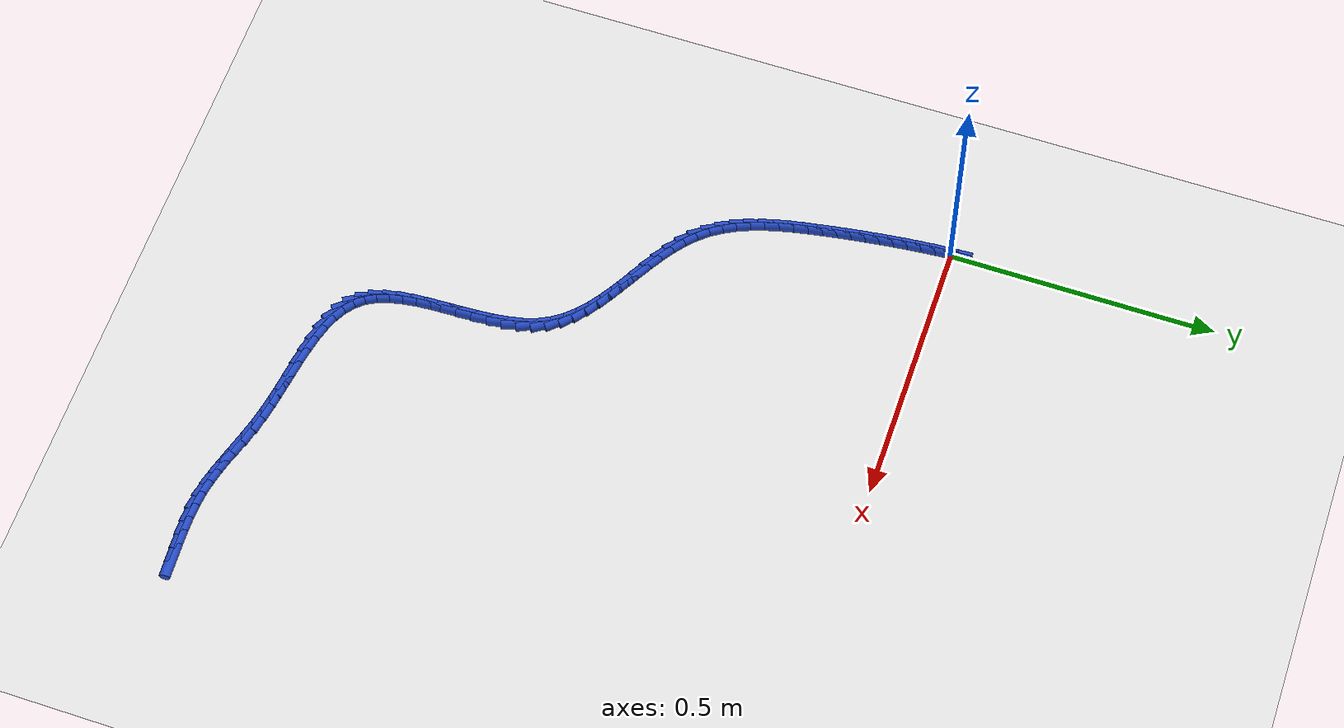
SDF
<sdf version="1.6">
 <world name="default">
  <model name="ground_plane">
   <static>1</static>
   <link name="link">
    <collision name="collision">
     <geometry><plane><normal>0 0 1</normal><size>100 100</size></plane></geometry>
     <surface><friction><ode><mu>100</mu><mu2>50</mu2></ode></friction></surface>
    </collision>
    <visual name="visual">
     <cast_shadows>0</cast_shadows>
     <geometry><plane><normal>0 0 1</normal><size>100 100</size></plane></geometry>
     <material>
      <script><uri>file://media/materials/scripts/gazebo.material</uri><name>Gazebo/WhiteGlow</name></script>
     </material>
    </visual>
   </link>
  </model>
  <model name="line">
   <link name="link_0">
    <pose>-4.336808689942018e-19 6.245004513516506e-17 0.01 0 1.57 -1.5156632983631286</pose>
    <collision name="collision">
     <geometry><cylinder><radius>0.01</radius><length>0.08</length></cylinder></geometry>
    </collision>
    <visual name="visual">
     <material>
      <script><name>Gazebo/Blue</name><uri>file://media/materials/scripts/gazebo.material</uri></script>
     </material>
     <geometry><cylinder><radius>0.01</radius><length>0.08</length></cylinder></geometry>
    </visual>
   </link>
   <link name="link_204">
    <pose>1.0068067473180728 -1.1181407085244373 0.01 0 1.57 0.05410076006660656</pose>
    <collision name="collision">
     <geometry><cylinder><radius>0.01</radius><length>0.08</length></cylinder></geometry>
    </collision>
    <visual name="visual">
     <material>
      <script><name>Gazebo/Blue</name><uri>file://media/materials/scripts/gazebo.material</uri></script>
     </material>
     <geometry><cylinder><radius>0.01</radius><length>0.08</length></cylinder></geometry>
    </visual>
   </link>
   <link name="link_205">
    <pose>0.9802364455773591 -1.1195795861310396 0.01 0 1.57 0.042651616677727704</pose>
    <collision name="collision">
     <geometry><cylinder><radius>0.01</radius><length>0.08</length></cylinder></geometry>
    </collision>
    <visual name="visual">
     <material>
      <script><name>Gazebo/Blue</name><uri>file://media/materials/scripts/gazebo.material</uri></script>
     </material>
     <geometry><cylinder><radius>0.01</radius><length>0.08</length></cylinder></geometry>
    </visual>
   </link>
   <link name="link_206">
    <pose>0.9538807871666061 -1.12070437971358 0.01 0 1.57 0.014492640856504835</pose>
    <collision name="collision">
     <geometry><cylinder><radius>0.01</radius><length>0.08</length></cylinder></geometry>
    </collision>
    <visual name="visual">
     <material>
      <script><name>Gazebo/Blue</name><uri>file://media/materials/scripts/gazebo.material</uri></script>
     </material>
     <geometry><cylinder><radius>0.01</radius><length>0.08</length></cylinder></geometry>
    </visual>
   </link>
   <link name="link_207">
    <pose>0.9278006631498769 -1.1210823760491782 0.01 0 1.57 -0.031124327392992736</pose>
    <collision name="collision">
     <geometry><cylinder><radius>0.01</radius><length>0.08</length></cylinder></geometry>
    </collision>
    <visual name="visual">
     <material>
      <script><name>Gazebo/Blue</name><uri>file://media/materials/scripts/gazebo.material</uri></script>
     </material>
     <geometry><cylinder><radius>0.01</radius><length>0.08</length></cylinder></geometry>
    </visual>
   </link>
   <link name="link_208">
    <pose>0.9020569645912389 -1.1202808619149556 0.01 0 1.57 -0.0949437568069817</pose>
    <collision name="collision">
     <geometry><cylinder><radius>0.01</radius><length>0.08</length></cylinder></geometry>
    </collision>
    <visual name="visual">
     <material>
      <script><name>Gazebo/Blue</name><uri>file://media/materials/scripts/gazebo.material</uri></script>
     </material>
     <geometry><cylinder><radius>0.01</radius><length>0.08</length></cylinder></geometry>
    </visual>
   </link>
   <link name="link_209">
    <pose>0.8767105825547556 -1.1178671240880322 0.01 0 1.57 -0.17100888922612556</pose>
    <collision name="collision">
     <geometry><cylinder><radius>0.01</radius><length>0.08</length></cylinder></geometry>
    </collision>
    <visual name="visual">
     <material>
      <script><name>Gazebo/Blue</name><uri>file://media/materials/scripts/gazebo.material</uri></script>
     </material>
     <geometry><cylinder><radius>0.01</radius><length>0.08</length></cylinder></geometry>
    </visual>
   </link>
   <link name="link_210">
    <pose>0.8517721970111292 -1.1135603741436149 0.01 0 1.57 -0.2331476497285858</pose>
    <collision name="collision">
     <geometry><cylinder><radius>0.01</radius><length>0.08</length></cylinder></geometry>
    </collision>
    <visual name="visual">
     <material>
      <script><name>Gazebo/Blue</name><uri>file://media/materials/scripts/gazebo.material</uri></script>
     </material>
     <geometry><cylinder><radius>0.01</radius><length>0.08</length></cylinder></geometry>
    </visual>
   </link>
   <link name="link_211">
    <pose>0.8270508592134423 -1.107689896056424 0.01 0 1.57 -0.2738693444778754</pose>
    <collision name="collision">
     <geometry><cylinder><radius>0.01</radius><length>0.08</length></cylinder></geometry>
    </collision>
    <visual name="visual">
     <material>
      <script><name>Gazebo/Blue</name><uri>file://media/materials/scripts/gazebo.material</uri></script>
     </material>
     <geometry><cylinder><radius>0.01</radius><length>0.08</length></cylinder></geometry>
    </visual>
   </link>
   <link name="link_212">
    <pose>0.8023050163841859 -1.1007380875179942 0.01 0 1.57 -0.2931861212545199</pose>
    <collision name="collision">
     <geometry><cylinder><radius>0.01</radius><length>0.08</length></cylinder></geometry>
    </collision>
    <visual name="visual">
     <material>
      <script><name>Gazebo/Blue</name><uri>file://media/materials/scripts/gazebo.material</uri></script>
     </material>
     <geometry><cylinder><radius>0.01</radius><length>0.08</length></cylinder></geometry>
    </visual>
   </link>
   <link name="link_213">
    <pose>0.7772931157457378 -1.0931873462201949 0.01 0 1.57 -0.2918674027694441</pose>
    <collision name="collision">
     <geometry><cylinder><radius>0.01</radius><length>0.08</length></cylinder></geometry>
    </collision>
    <visual name="visual">
     <material>
      <script><name>Gazebo/Blue</name><uri>file://media/materials/scripts/gazebo.material</uri></script>
     </material>
     <geometry><cylinder><radius>0.01</radius><length>0.08</length></cylinder></geometry>
    </visual>
   </link>
   <link name="link_214">
    <pose>0.7517736045204783 -1.0855200698548941 0.01 0 1.57 -0.2711079880267009</pose>
    <collision name="collision">
     <geometry><cylinder><radius>0.01</radius><length>0.08</length></cylinder></geometry>
    </collision>
    <visual name="visual">
     <material>
      <script><name>Gazebo/Blue</name><uri>file://media/materials/scripts/gazebo.material</uri></script>
     </material>
     <geometry><cylinder><radius>0.01</radius><length>0.08</length></cylinder></geometry>
    </visual>
   </link>
   <link name="link_215">
    <pose>0.7255049299307855 -1.0782186561139615 0.01 0 1.57 -0.23247567017582577</pose>
    <collision name="collision">
     <geometry><cylinder><radius>0.01</radius><length>0.08</length></cylinder></geometry>
    </collision>
    <visual name="visual">
     <material>
      <script><name>Gazebo/Blue</name><uri>file://media/materials/scripts/gazebo.material</uri></script>
     </material>
     <geometry><cylinder><radius>0.01</radius><length>0.08</length></cylinder></geometry>
    </visual>
   </link>
   <link name="link_216">
    <pose>0.6982459851080546 -1.071764929838584 0.01 0 1.57 -0.186950548923952</pose>
    <collision name="collision">
     <geometry><cylinder><radius>0.01</radius><length>0.08</length></cylinder></geometry>
    </collision>
    <visual name="visual">
     <material>
      <script><name>Gazebo/Blue</name><uri>file://media/materials/scripts/gazebo.material</uri></script>
     </material>
     <geometry><cylinder><radius>0.01</radius><length>0.08</length></cylinder></geometry>
    </visual>
   </link>
   <link name="link_217">
    <pose>0.6699354651753151 -1.0664097277318563 0.01 0 1.57 -0.15712659383047975</pose>
    <collision name="collision">
     <geometry><cylinder><radius>0.01</radius><length>0.08</length></cylinder></geometry>
    </collision>
    <visual name="visual">
     <material>
      <script><name>Gazebo/Blue</name><uri>file://media/materials/scripts/gazebo.material</uri></script>
     </material>
     <geometry><cylinder><radius>0.01</radius><length>0.08</length></cylinder></geometry>
    </visual>
   </link>
   <link name="link_218">
    <pose>0.6409664883134508 -1.0618200979910393 0.01 0 1.57 -0.14463772891868623</pose>
    <collision name="collision">
     <geometry><cylinder><radius>0.01</radius><length>0.08</length></cylinder></geometry>
    </collision>
    <visual name="visual">
     <material>
      <script><name>Gazebo/Blue</name><uri>file://media/materials/scripts/gazebo.material</uri></script>
     </material>
     <geometry><cylinder><radius>0.01</radius><length>0.08</length></cylinder></geometry>
    </visual>
   </link>
   <link name="link_219">
    <pose>0.6118028629203501 -1.057572274460014 0.01 0 1.57 -0.148741478833304</pose>
    <collision name="collision">
     <geometry><cylinder><radius>0.01</radius><length>0.08</length></cylinder></geometry>
    </collision>
    <visual name="visual">
     <material>
      <script><name>Gazebo/Blue</name><uri>file://media/materials/scripts/gazebo.material</uri></script>
     </material>
     <geometry><cylinder><radius>0.01</radius><length>0.08</length></cylinder></geometry>
    </visual>
   </link>
   <link name="link_220">
    <pose>0.5829083973938987 -1.053242490982662 0.01 0 1.57 -0.170048167568897</pose>
    <collision name="collision">
     <geometry><cylinder><radius>0.01</radius><length>0.08</length></cylinder></geometry>
    </collision>
    <visual name="visual">
     <material>
      <script><name>Gazebo/Blue</name><uri>file://media/materials/scripts/gazebo.material</uri></script>
     </material>
     <geometry><cylinder><radius>0.01</radius><length>0.08</length></cylinder></geometry>
    </visual>
   </link>
   <link name="link_221">
    <pose>0.5547469001319846 -1.0484069814028638 0.01 0 1.57 -0.210626931151228</pose>
    <collision name="collision">
     <geometry><cylinder><radius>0.01</radius><length>0.08</length></cylinder></geometry>
    </collision>
    <visual name="visual">
     <material>
      <script><name>Gazebo/Blue</name><uri>file://media/materials/scripts/gazebo.material</uri></script>
     </material>
     <geometry><cylinder><radius>0.01</radius><length>0.08</length></cylinder></geometry>
    </visual>
   </link>
   <link name="link_222">
    <pose>0.5277821795324933 -1.0426419795645006 0.01 0 1.57 -0.27422136325497126</pose>
    <collision name="collision">
     <geometry><cylinder><radius>0.01</radius><length>0.08</length></cylinder></geometry>
    </collision>
    <visual name="visual">
     <material>
      <script><name>Gazebo/Blue</name><uri>file://media/materials/scripts/gazebo.material</uri></script>
     </material>
     <geometry><cylinder><radius>0.01</radius><length>0.08</length></cylinder></geometry>
    </visual>
   </link>
   <link name="link_223">
    <pose>0.5024780439933136 -1.0355237193114541 0.01 0 1.57 -0.3664219604289515</pose>
    <collision name="collision">
     <geometry><cylinder><radius>0.01</radius><length>0.08</length></cylinder></geometry>
    </collision>
    <visual name="visual">
     <material>
      <script><name>Gazebo/Blue</name><uri>file://media/materials/scripts/gazebo.material</uri></script>
     </material>
     <geometry><cylinder><radius>0.01</radius><length>0.08</length></cylinder></geometry>
    </visual>
   </link>
   <link name="link_224">
    <pose>0.47929830191233086 -1.0266284344876047 0.01 0 1.57 -0.494254664561035</pose>
    <collision name="collision">
     <geometry><cylinder><radius>0.01</radius><length>0.08</length></cylinder></geometry>
    </collision>
    <visual name="visual">
     <material>
      <script><name>Gazebo/Blue</name><uri>file://media/materials/scripts/gazebo.material</uri></script>
     </material>
     <geometry><cylinder><radius>0.01</radius><length>0.08</length></cylinder></geometry>
    </visual>
   </link>
   <link name="link_225">
    <pose>0.4587067616874333 -1.0155323589368341 0.01 0 1.57 -0.6638355269272612</pose>
    <collision name="collision">
     <geometry><cylinder><radius>0.01</radius><length>0.08</length></cylinder></geometry>
    </collision>
    <visual name="visual">
     <material>
      <script><name>Gazebo/Blue</name><uri>file://media/materials/scripts/gazebo.material</uri></script>
     </material>
     <geometry><cylinder><radius>0.01</radius><length>0.08</length></cylinder></geometry>
    </visual>
   </link>
   <link name="link_226">
    <pose>0.4411672317165071 -1.001811726503023 0.01 0 1.57 -0.8731542018869461</pose>
    <collision name="collision">
     <geometry><cylinder><radius>0.01</radius><length>0.08</length></cylinder></geometry>
    </collision>
    <visual name="visual">
     <material>
      <script><name>Gazebo/Blue</name><uri>file://media/materials/scripts/gazebo.material</uri></script>
     </material>
     <geometry><cylinder><radius>0.01</radius><length>0.08</length></cylinder></geometry>
    </visual>
   </link>
   <link name="link_227">
    <pose>0.42712417447235496 -0.9850592131197027 0.01 0 1.57 -1.0799787422342597</pose>
    <collision name="collision">
     <geometry><cylinder><radius>0.01</radius><length>0.08</length></cylinder></geometry>
    </collision>
    <visual name="visual">
     <material>
      <script><name>Gazebo/Blue</name><uri>file://media/materials/scripts/gazebo.material</uri></script>
     </material>
     <geometry><cylinder><radius>0.01</radius><length>0.08</length></cylinder></geometry>
    </visual>
   </link>
   <link name="link_228">
    <pose>0.4165481791612059 -0.9652702393138024 0.01 0 1.57 -1.2427219098864273</pose>
    <collision name="collision">
     <geometry><cylinder><radius>0.01</radius><length>0.08</length></cylinder></geometry>
    </collision>
    <visual name="visual">
     <material>
      <script><name>Gazebo/Blue</name><uri>file://media/materials/scripts/gazebo.material</uri></script>
     </material>
     <geometry><cylinder><radius>0.01</radius><length>0.08</length></cylinder></geometry>
    </visual>
   </link>
   <link name="link_229">
    <pose>0.4089193172610195 -0.9428571163232504 0.01 0 1.57 -1.3615810914100703</pose>
    <collision name="collision">
     <geometry><cylinder><radius>0.01</radius><length>0.08</length></cylinder></geometry>
    </collision>
    <visual name="visual">
     <material>
      <script><name>Gazebo/Blue</name><uri>file://media/materials/scripts/gazebo.material</uri></script>
     </material>
     <geometry><cylinder><radius>0.01</radius><length>0.08</length></cylinder></geometry>
    </visual>
   </link>
   <link name="link_230">
    <pose>0.40369498418865474 -0.9182514277561475 0.01 0 1.57 -1.443955986963107</pose>
    <collision name="collision">
     <geometry><cylinder><radius>0.01</radius><length>0.08</length></cylinder></geometry>
    </collision>
    <visual name="visual">
     <material>
      <script><name>Gazebo/Blue</name><uri>file://media/materials/scripts/gazebo.material</uri></script>
     </material>
     <geometry><cylinder><radius>0.01</radius><length>0.08</length></cylinder></geometry>
    </visual>
   </link>
   <link name="link_231">
    <pose>0.4003325753609705 -0.8918847572205929 0.01 0 1.57 -1.497161500297152</pose>
    <collision name="collision">
     <geometry><cylinder><radius>0.01</radius><length>0.08</length></cylinder></geometry>
    </collision>
    <visual name="visual">
     <material>
      <script><name>Gazebo/Blue</name><uri>file://media/materials/scripts/gazebo.material</uri></script>
     </material>
     <geometry><cylinder><radius>0.01</radius><length>0.08</length></cylinder></geometry>
    </visual>
   </link>
   <link name="link_232">
    <pose>0.3982894861948258 -0.8641886883246881 0.01 0 1.57 -1.526536963535802</pose>
    <collision name="collision">
     <geometry><cylinder><radius>0.01</radius><length>0.08</length></cylinder></geometry>
    </collision>
    <visual name="visual">
     <material>
      <script><name>Gazebo/Blue</name><uri>file://media/materials/scripts/gazebo.material</uri></script>
     </material>
     <geometry><cylinder><radius>0.01</radius><length>0.08</length></cylinder></geometry>
    </visual>
   </link>
   <link name="link_233">
    <pose>0.3970231121070796 -0.8355948046765321 0.01 0 1.57 -1.5352895931791342</pose>
    <collision name="collision">
     <geometry><cylinder><radius>0.01</radius><length>0.08</length></cylinder></geometry>
    </collision>
    <visual name="visual">
     <material>
      <script><name>Gazebo/Blue</name><uri>file://media/materials/scripts/gazebo.material</uri></script>
     </material>
     <geometry><cylinder><radius>0.01</radius><length>0.08</length></cylinder></geometry>
    </visual>
   </link>
   <link name="link_234">
    <pose>0.3959908485145907 -0.8065346898842265 0.01 0 1.57 -1.5247464639756734</pose>
    <collision name="collision">
     <geometry><cylinder><radius>0.01</radius><length>0.08</length></cylinder></geometry>
    </collision>
    <visual name="visual">
     <material>
      <script><name>Gazebo/Blue</name><uri>file://media/materials/scripts/gazebo.material</uri></script>
     </material>
     <geometry><cylinder><radius>0.01</radius><length>0.08</length></cylinder></geometry>
    </visual>
   </link>
   <link name="link_235">
    <pose>0.3946500908342184 -0.7774399275558711 0.01 0 1.57 -1.494567237090191</pose>
    <collision name="collision">
     <geometry><cylinder><radius>0.01</radius><length>0.08</length></cylinder></geometry>
    </collision>
    <visual name="visual">
     <material>
      <script><name>Gazebo/Blue</name><uri>file://media/materials/scripts/gazebo.material</uri></script>
     </material>
     <geometry><cylinder><radius>0.01</radius><length>0.08</length></cylinder></geometry>
    </visual>
   </link>
   <link name="link_236">
    <pose>0.3924582344828212 -0.7487421012995648 0.01 0 1.57 -1.442842997710694</pose>
    <collision name="collision">
     <geometry><cylinder><radius>0.01</radius><length>0.08</length></cylinder></geometry>
    </collision>
    <visual name="visual">
     <material>
      <script><name>Gazebo/Blue</name><uri>file://media/materials/scripts/gazebo.material</uri></script>
     </material>
     <geometry><cylinder><radius>0.01</radius><length>0.08</length></cylinder></geometry>
    </visual>
   </link>
   <link name="link_237">
    <pose>0.38887267487725863 -0.7208727947234101 0.01 0 1.57 -1.3661832463202155</pose>
    <collision name="collision">
     <geometry><cylinder><radius>0.01</radius><length>0.08</length></cylinder></geometry>
    </collision>
    <visual name="visual">
     <material>
      <script><name>Gazebo/Blue</name><uri>file://media/materials/scripts/gazebo.material</uri></script>
     </material>
     <geometry><cylinder><radius>0.01</radius><length>0.08</length></cylinder></geometry>
    </visual>
   </link>
   <link name="link_238">
    <pose>0.383350807434389 -0.6942635914355052 0.01 0 1.57 -1.2601044150557472</pose>
    <collision name="collision">
     <geometry><cylinder><radius>0.01</radius><length>0.08</length></cylinder></geometry>
    </collision>
    <visual name="visual">
     <material>
      <script><name>Gazebo/Blue</name><uri>file://media/materials/scripts/gazebo.material</uri></script>
     </material>
     <geometry><cylinder><radius>0.01</radius><length>0.08</length></cylinder></geometry>
    </visual>
   </link>
   <link name="link_239">
    <pose>0.3753500275710718 -0.6693460750439522 0.01 0 1.57 -1.1205346052460774</pose>
    <collision name="collision">
     <geometry><cylinder><radius>0.01</radius><length>0.08</length></cylinder></geometry>
    </collision>
    <visual name="visual">
     <material>
      <script><name>Gazebo/Blue</name><uri>file://media/materials/scripts/gazebo.material</uri></script>
     </material>
     <geometry><cylinder><radius>0.01</radius><length>0.08</length></cylinder></geometry>
    </visual>
   </link>
   <link name="link_240">
    <pose>0.3643306933399023 -0.6465495544303124 0.01 0 1.57 -0.9633083486452023</pose>
    <collision name="collision">
     <geometry><cylinder><radius>0.01</radius><length>0.08</length></cylinder></geometry>
    </collision>
    <visual name="visual">
     <material>
      <script><name>Gazebo/Blue</name><uri>file://media/materials/scripts/gazebo.material</uri></script>
     </material>
     <geometry><cylinder><radius>0.01</radius><length>0.08</length></cylinder></geometry>
    </visual>
   </link>
   <link name="link_241">
    <pose>0.35008087784641745 -0.6260517172193245 0.01 0 1.57 -0.8254748179546937</pose>
    <collision name="collision">
     <geometry><cylinder><radius>0.01</radius><length>0.08</length></cylinder></geometry>
    </collision>
    <visual name="visual">
     <material>
      <script><name>Gazebo/Blue</name><uri>file://media/materials/scripts/gazebo.material</uri></script>
     </material>
     <geometry><cylinder><radius>0.01</radius><length>0.08</length></cylinder></geometry>
    </visual>
   </link>
   <link name="link_242">
    <pose>0.3330092156605689 -0.6075537808393986 0.01 0 1.57 -0.7147642481540535</pose>
    <collision name="collision">
     <geometry><cylinder><radius>0.01</radius><length>0.08</length></cylinder></geometry>
    </collision>
    <visual name="visual">
     <material>
      <script><name>Gazebo/Blue</name><uri>file://media/materials/scripts/gazebo.material</uri></script>
     </material>
     <geometry><cylinder><radius>0.01</radius><length>0.08</length></cylinder></geometry>
    </visual>
   </link>
   <link name="link_243">
    <pose>0.31359346853677844 -0.5907038865209484 0.01 0 1.57 -0.631123153344958</pose>
    <collision name="collision">
     <geometry><cylinder><radius>0.01</radius><length>0.08</length></cylinder></geometry>
    </collision>
    <visual name="visual">
     <material>
      <script><name>Gazebo/Blue</name><uri>file://media/materials/scripts/gazebo.material</uri></script>
     </material>
     <geometry><cylinder><radius>0.01</radius><length>0.08</length></cylinder></geometry>
    </visual>
   </link>
   <link name="link_244">
    <pose>0.29231139822946633 -0.5751501754943862 0.01 0 1.57 -0.5724418565144686</pose>
    <collision name="collision">
     <geometry><cylinder><radius>0.01</radius><length>0.08</length></cylinder></geometry>
    </collision>
    <visual name="visual">
     <material>
      <script><name>Gazebo/Blue</name><uri>file://media/materials/scripts/gazebo.material</uri></script>
     </material>
     <geometry><cylinder><radius>0.01</radius><length>0.08</length></cylinder></geometry>
    </visual>
   </link>
   <link name="link_245">
    <pose>0.2696407664930546 -0.5605407889901256 0.01 0 1.57 -0.5362953735109725</pose>
    <collision name="collision">
     <geometry><cylinder><radius>0.01</radius><length>0.08</length></cylinder></geometry>
    </collision>
    <visual name="visual">
     <material>
      <script><name>Gazebo/Blue</name><uri>file://media/materials/scripts/gazebo.material</uri></script>
     </material>
     <geometry><cylinder><radius>0.01</radius><length>0.08</length></cylinder></geometry>
    </visual>
   </link>
   <link name="link_246">
    <pose>0.24605933508196354 -0.5465238682385791 0.01 0 1.57 -0.5208320805104013</pose>
    <collision name="collision">
     <geometry><cylinder><radius>0.01</radius><length>0.08</length></cylinder></geometry>
    </collision>
    <visual name="visual">
     <material>
      <script><name>Gazebo/Blue</name><uri>file://media/materials/scripts/gazebo.material</uri></script>
     </material>
     <geometry><cylinder><radius>0.01</radius><length>0.08</length></cylinder></geometry>
    </visual>
   </link>
   <link name="link_247">
    <pose>0.22204486575061366 -0.5327475544701592 0.01 0 1.57 -0.5251189364317509</pose>
    <collision name="collision">
     <geometry><cylinder><radius>0.01</radius><length>0.08</length></cylinder></geometry>
    </collision>
    <visual name="visual">
     <material>
      <script><name>Gazebo/Blue</name><uri>file://media/materials/scripts/gazebo.material</uri></script>
     </material>
     <geometry><cylinder><radius>0.01</radius><length>0.08</length></cylinder></geometry>
    </visual>
   </link>
   <link name="link_248">
    <pose>0.19807512025342738 -0.51885998891528 0.01 0 1.57 -0.5492259077996713</pose>
    <collision name="collision">
     <geometry><cylinder><radius>0.01</radius><length>0.08</length></cylinder></geometry>
    </collision>
    <visual name="visual">
     <material>
      <script><name>Gazebo/Blue</name><uri>file://media/materials/scripts/gazebo.material</uri></script>
     </material>
     <geometry><cylinder><radius>0.01</radius><length>0.08</length></cylinder></geometry>
    </visual>
   </link>
   <link name="link_249">
    <pose>0.17462786034482433 -0.5045093128043533 0.01 0 1.57 -0.5941753192986435</pose>
    <collision name="collision">
     <geometry><cylinder><radius>0.01</radius><length>0.08</length></cylinder></geometry>
    </collision>
    <visual name="visual">
     <material>
      <script><name>Gazebo/Blue</name><uri>file://media/materials/scripts/gazebo.material</uri></script>
     </material>
     <geometry><cylinder><radius>0.01</radius><length>0.08</length></cylinder></geometry>
    </visual>
   </link>
   <link name="link_250">
    <pose>0.15218084777922689 -0.48934366736779317 0.01 0 1.57 -0.6617336114100697</pose>
    <collision name="collision">
     <geometry><cylinder><radius>0.01</radius><length>0.08</length></cylinder></geometry>
    </collision>
    <visual name="visual">
     <material>
      <script><name>Gazebo/Blue</name><uri>file://media/materials/scripts/gazebo.material</uri></script>
     </material>
     <geometry><cylinder><radius>0.01</radius><length>0.08</length></cylinder></geometry>
    </visual>
   </link>
   <link name="link_251">
    <pose>0.1312118443110547 -0.4730111938360111 0.01 0 1.57 -0.753885708154747</pose>
    <collision name="collision">
     <geometry><cylinder><radius>0.01</radius><length>0.08</length></cylinder></geometry>
    </collision>
    <visual name="visual">
     <material>
      <script><name>Gazebo/Blue</name><uri>file://media/materials/scripts/gazebo.material</uri></script>
     </material>
     <geometry><cylinder><radius>0.01</radius><length>0.08</length></cylinder></geometry>
    </visual>
   </link>
   <link name="link_252">
    <pose>0.11219861169473014 -0.4551600334394216 0.01 0 1.57 -0.8698949688999668</pose>
    <collision name="collision">
     <geometry><cylinder><radius>0.01</radius><length>0.08</length></cylinder></geometry>
    </collision>
    <visual name="visual">
     <material>
      <script><name>Gazebo/Blue</name><uri>file://media/materials/scripts/gazebo.material</uri></script>
     </material>
     <geometry><cylinder><radius>0.01</radius><length>0.08</length></cylinder></geometry>
    </visual>
   </link>
   <link name="link_253">
    <pose>0.09558248694303163 -0.43546872438794937 0.01 0 1.57 -0.9870051345106785</pose>
    <collision name="collision">
     <geometry><cylinder><radius>0.01</radius><length>0.08</length></cylinder></geometry>
    </collision>
    <visual name="visual">
     <material>
      <script><name>Gazebo/Blue</name><uri>file://media/materials/scripts/gazebo.material</uri></script>
     </material>
     <geometry><cylinder><radius>0.01</radius><length>0.08</length></cylinder></geometry>
    </visual>
   </link>
   <link name="link_254">
    <pose>0.08138040295579943 -0.4139699763295344 0.01 0 1.57 -1.0891551379126392</pose>
    <collision name="collision">
     <geometry><cylinder><radius>0.01</radius><length>0.08</length></cylinder></geometry>
    </collision>
    <visual name="visual">
     <material>
      <script><name>Gazebo/Blue</name><uri>file://media/materials/scripts/gazebo.material</uri></script>
     </material>
     <geometry><cylinder><radius>0.01</radius><length>0.08</length></cylinder></geometry>
    </visual>
   </link>
   <link name="link_255">
    <pose>0.0693350239004605 -0.3909253801797504 0.01 0 1.57 -1.175473723195908</pose>
    <collision name="collision">
     <geometry><cylinder><radius>0.01</radius><length>0.08</length></cylinder></geometry>
    </collision>
    <visual name="visual">
     <material>
      <script><name>Gazebo/Blue</name><uri>file://media/materials/scripts/gazebo.material</uri></script>
     </material>
     <geometry><cylinder><radius>0.01</radius><length>0.08</length></cylinder></geometry>
    </visual>
   </link>
   <link name="link_256">
    <pose>0.05918442210454956 -0.3666003588117088 0.01 0 1.57 -1.2465234403461127</pose>
    <collision name="collision">
     <geometry><cylinder><radius>0.01</radius><length>0.08</length></cylinder></geometry>
    </collision>
    <visual name="visual">
     <material>
      <script><name>Gazebo/Blue</name><uri>file://media/materials/scripts/gazebo.material</uri></script>
     </material>
     <geometry><cylinder><radius>0.01</radius><length>0.08</length></cylinder></geometry>
    </visual>
   </link>
   <link name="link_257">
    <pose>0.05066666989560027 -0.34126033509851866 0.01 0 1.57 -1.303421404097788</pose>
    <collision name="collision">
     <geometry><cylinder><radius>0.01</radius><length>0.08</length></cylinder></geometry>
    </collision>
    <visual name="visual">
     <material>
      <script><name>Gazebo/Blue</name><uri>file://media/materials/scripts/gazebo.material</uri></script>
     </material>
     <geometry><cylinder><radius>0.01</radius><length>0.08</length></cylinder></geometry>
    </visual>
   </link>
   <link name="link_258">
    <pose>0.04351983960114649 -0.31517073191328876 0.01 0 1.57 -1.3473789401354566</pose>
    <collision name="collision">
     <geometry><cylinder><radius>0.01</radius><length>0.08</length></cylinder></geometry>
    </collision>
    <visual name="visual">
     <material>
      <script><name>Gazebo/Blue</name><uri>file://media/materials/scripts/gazebo.material</uri></script>
     </material>
     <geometry><cylinder><radius>0.01</radius><length>0.08</length></cylinder></geometry>
    </visual>
   </link>
   <link name="link_259">
    <pose>0.03748200354872269 -0.2885969721291307 0.01 0 1.57 -1.3794274750546383</pose>
    <collision name="collision">
     <geometry><cylinder><radius>0.01</radius><length>0.08</length></cylinder></geometry>
    </collision>
    <visual name="visual">
     <material>
      <script><name>Gazebo/Blue</name><uri>file://media/materials/scripts/gazebo.material</uri></script>
     </material>
     <geometry><cylinder><radius>0.01</radius><length>0.08</length></cylinder></geometry>
    </visual>
   </link>
   <link name="link_260">
    <pose>0.03229123406586252 -0.2618044786191526 0.01 0 1.57 -1.4002686323538034</pose>
    <collision name="collision">
     <geometry><cylinder><radius>0.01</radius><length>0.08</length></cylinder></geometry>
    </collision>
    <visual name="visual">
     <material>
      <script><name>Gazebo/Blue</name><uri>file://media/materials/scripts/gazebo.material</uri></script>
     </material>
     <geometry><cylinder><radius>0.01</radius><length>0.08</length></cylinder></geometry>
    </visual>
   </link>
   <link name="link_261">
    <pose>0.027685603480100348 -0.235058674256466 0.01 0 1.57 -1.411333711736443</pose>
    <collision name="collision">
     <geometry><cylinder><radius>0.01</radius><length>0.08</length></cylinder></geometry>
    </collision>
    <visual name="visual">
     <material>
      <script><name>Gazebo/Blue</name><uri>file://media/materials/scripts/gazebo.material</uri></script>
     </material>
     <geometry><cylinder><radius>0.01</radius><length>0.08</length></cylinder></geometry>
    </visual>
   </link>
   <link name="link_262">
    <pose>0.023428893695179597 -0.2085912283502725 0.01 0 1.57 -1.4202028951967705</pose>
    <collision name="collision">
     <geometry><cylinder><radius>0.01</radius><length>0.08</length></cylinder></geometry>
    </collision>
    <visual name="visual">
     <material>
      <script><name>Gazebo/Blue</name><uri>file://media/materials/scripts/gazebo.material</uri></script>
     </material>
     <geometry><cylinder><radius>0.01</radius><length>0.08</length></cylinder></geometry>
    </visual>
   </link>
   <link name="link_263">
    <pose>0.019455972769738074 -0.1824091947818283 0.01 0 1.57 -1.429925503076498</pose>
    <collision name="collision">
     <geometry><cylinder><radius>0.01</radius><length>0.08</length></cylinder></geometry>
    </collision>
    <visual name="visual">
     <material>
      <script><name>Gazebo/Blue</name><uri>file://media/materials/scripts/gazebo.material</uri></script>
     </material>
     <geometry><cylinder><radius>0.01</radius><length>0.08</length></cylinder></geometry>
    </visual>
   </link>
   <link name="link_264">
    <pose>0.015771564387430034 -0.15642791544600435 0.01 0 1.57 -1.4404396073141044</pose>
    <collision name="collision">
     <geometry><cylinder><radius>0.01</radius><length>0.08</length></cylinder></geometry>
    </collision>
    <visual name="visual">
     <material>
      <script><name>Gazebo/Blue</name><uri>file://media/materials/scripts/gazebo.material</uri></script>
     </material>
     <geometry><cylinder><radius>0.01</radius><length>0.08</length></cylinder></geometry>
    </visual>
   </link>
   <link name="link_265">
    <pose>0.01238059930719519 -0.13056246037287164 0.01 0 1.57 -1.451655745769153</pose>
    <collision name="collision">
     <geometry><cylinder><radius>0.01</radius><length>0.08</length></cylinder></geometry>
    </collision>
    <visual name="visual">
     <material>
      <script><name>Gazebo/Blue</name><uri>file://media/materials/scripts/gazebo.material</uri></script>
     </material>
     <geometry><cylinder><radius>0.01</radius><length>0.08</length></cylinder></geometry>
    </visual>
   </link>
   <link name="link_266">
    <pose>0.009288008287972853 -0.10472789959249826 0.01 0 1.57 -1.4634684618385227</pose>
    <collision name="collision">
     <geometry><cylinder><radius>0.01</radius><length>0.08</length></cylinder></geometry>
    </collision>
    <visual name="visual">
     <material>
      <script><name>Gazebo/Blue</name><uri>file://media/materials/scripts/gazebo.material</uri></script>
     </material>
     <geometry><cylinder><radius>0.01</radius><length>0.08</length></cylinder></geometry>
    </visual>
   </link>
   <link name="link_267">
    <pose>0.00649872208870272 -0.07883930313495538 0.01 0 1.57 -1.4757595155794363</pose>
    <collision name="collision">
     <geometry><cylinder><radius>0.01</radius><length>0.08</length></cylinder></geometry>
    </collision>
    <visual name="visual">
     <material>
      <script><name>Gazebo/Blue</name><uri>file://media/materials/scripts/gazebo.material</uri></script>
     </material>
     <geometry><cylinder><radius>0.01</radius><length>0.08</length></cylinder></geometry>
    </visual>
   </link>
   <link name="link_268">
    <pose>0.004017671468324201 -0.05281174103031179 0.01 0 1.57 -1.4884018074105716</pose>
    <collision name="collision">
     <geometry><cylinder><radius>0.01</radius><length>0.08</length></cylinder></geometry>
    </collision>
    <visual name="visual">
     <material>
      <script><name>Gazebo/Blue</name><uri>file://media/materials/scripts/gazebo.material</uri></script>
     </material>
     <geometry><cylinder><radius>0.01</radius><length>0.08</length></cylinder></geometry>
    </visual>
   </link>
   <link name="link_269">
    <pose>0.0018497871857767472 -0.02656028330863624 0.01 0 1.57 -1.5012637431925722</pose>
    <collision name="collision">
     <geometry><cylinder><radius>0.01</radius><length>0.08</length></cylinder></geometry>
    </collision>
    <visual name="visual">
     <material>
      <script><name>Gazebo/Blue</name><uri>file://media/materials/scripts/gazebo.material</uri></script>
     </material>
     <geometry><cylinder><radius>0.01</radius><length>0.08</length></cylinder></geometry>
    </visual>
   </link>
   <link name="link_270">
    <pose>4.336808689942018e-19 7.632783294297951e-17 0.01 0 1.57 -1.51421372568815</pose>
    <collision name="collision">
     <geometry><cylinder><radius>0.01</radius><length>0.08</length></cylinder></geometry>
    </collision>
    <visual name="visual">
     <material>
      <script><name>Gazebo/Blue</name><uri>file://media/materials/scripts/gazebo.material</uri></script>
     </material>
     <geometry><cylinder><radius>0.01</radius><length>0.08</length></cylinder></geometry>
    </visual>
   </link>
  </model>
 </world>
</sdf>
